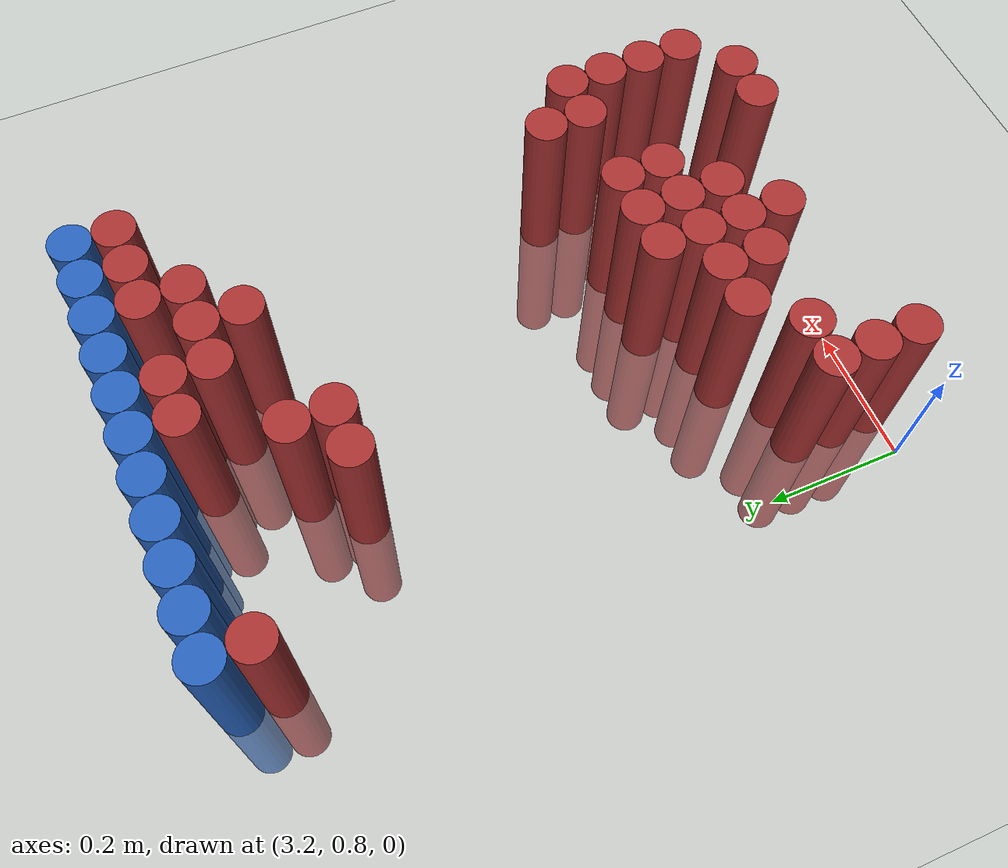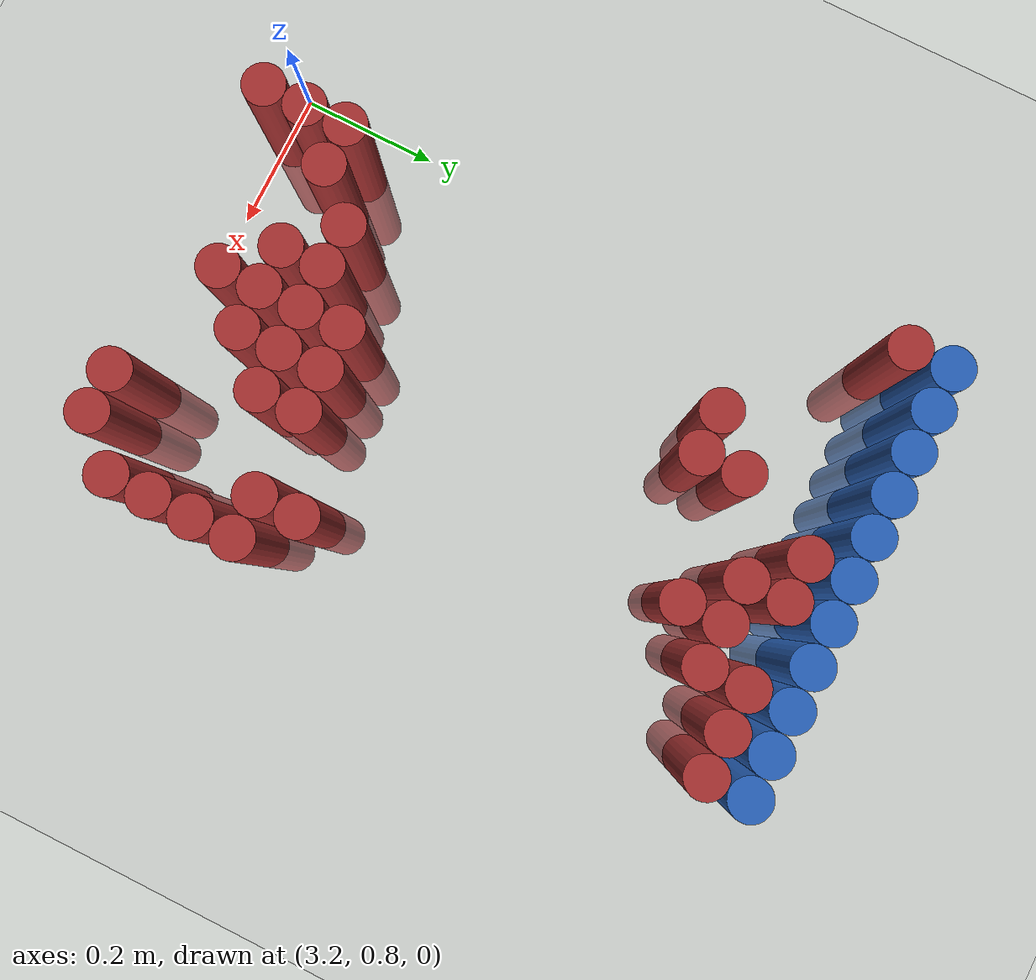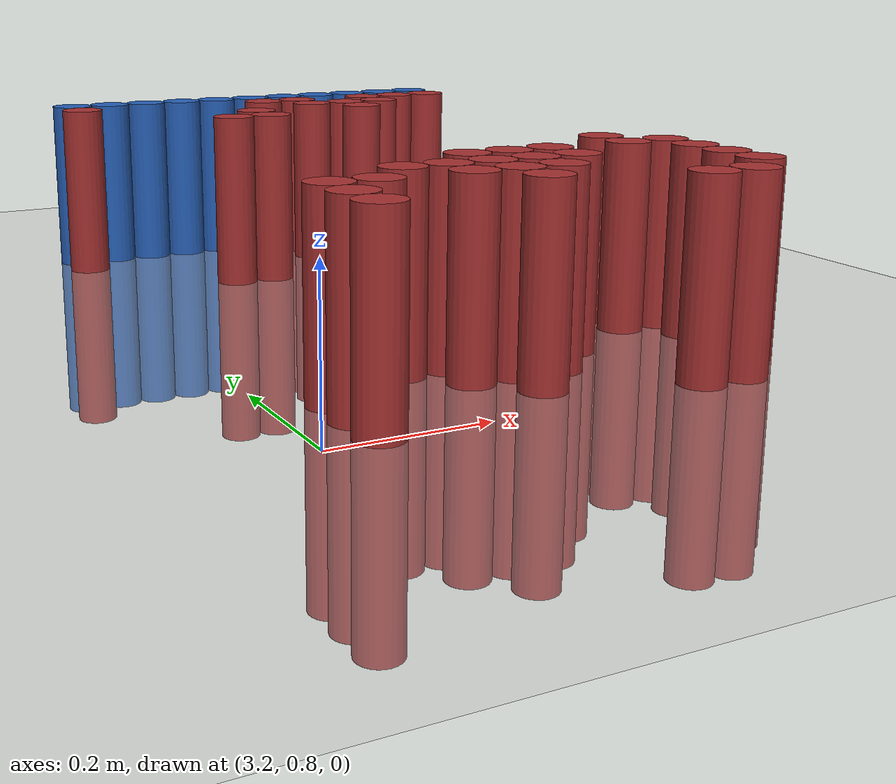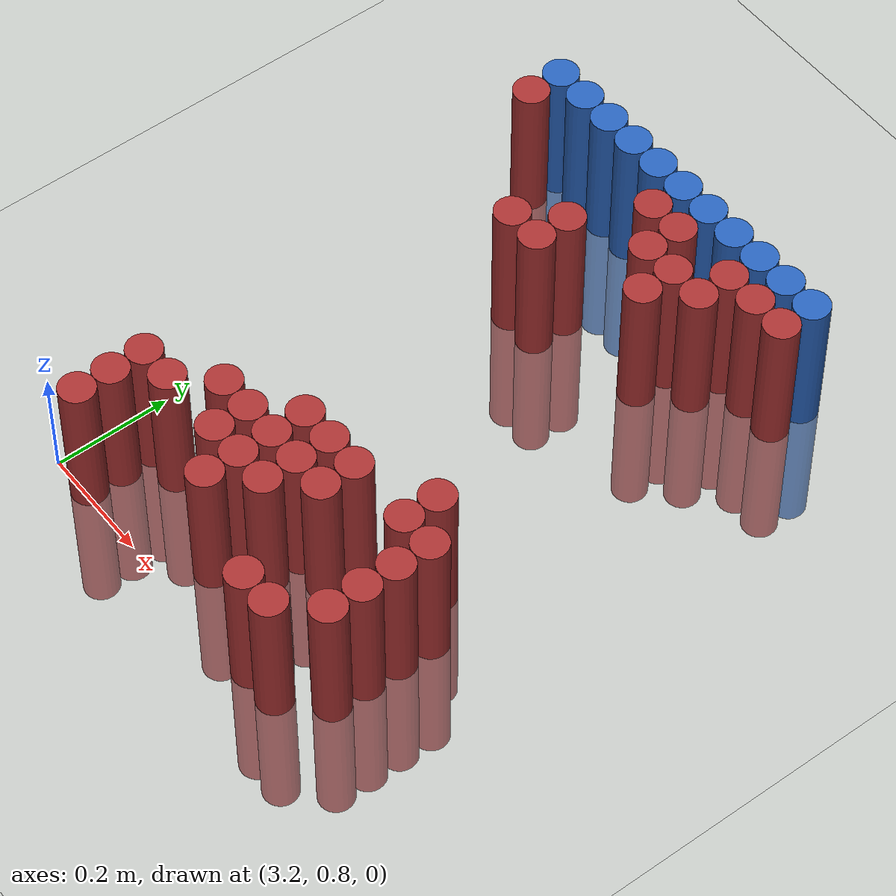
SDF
<sdf version="1.6">
 <world name="default">
  <model name="ground_plane">
   <static>1</static>
   <link name="link">
    <collision name="collision">
     <geometry><plane><normal>0 0 1</normal><size>100 100</size></plane></geometry>
     <surface><friction><ode><mu>100</mu><mu2>50</mu2></ode></friction></surface>
    </collision>
    <visual name="visual">
     <cast_shadows>0</cast_shadows>
     <geometry><plane><normal>0 0 1</normal><size>100 100</size></plane></geometry>
     <material>
      <script><uri>file://media/materials/scripts/gazebo.material</uri><name>Gazebo/Grey</name></script>
     </material>
    </visual>
   </link>
  </model>
  <model name="unit_cylinder_114">
   <static>1</static>
   <pose>3.210000 1.770000 0.000000 0.000000 0.000000 0.000000</pose>
   <link name="link">
    <inertial>
     <mass>1</mass>
     <inertia><ixx>0.145833</ixx><ixy>0</ixy><ixz>0</ixz><iyy>0.145833</iyy><iyz>0</iyz><izz>0.125</izz></inertia>
    </inertial>
    <collision name="collision">
     <geometry><cylinder><radius>0.030000</radius><length>0.5</length></cylinder></geometry>
    </collision>
    <visual name="visual">
     <geometry><cylinder><radius>0.030000</radius><length>0.5</length></cylinder></geometry>
     <material>
      <ambient>0.152000 0.379000 0.720000 1</ambient>
      <diffuse>0.152000 0.379000 0.720000 1</diffuse>
     </material>
     <material>
      <script><name>Gazebo/Grey</name><uri>file://media/materials/scripts/gazebo.material</uri></script>
     </material>
    </visual>
   </link>
  </model>
  <model name="unit_cylinder_115">
   <static>1</static>
   <pose>3.270000 1.770000 0.000000 0.000000 0.000000 0.000000</pose>
   <link name="link">
    <inertial>
     <mass>1</mass>
     <inertia><ixx>0.145833</ixx><ixy>0</ixy><ixz>0</ixz><iyy>0.145833</iyy><iyz>0</iyz><izz>0.125</izz></inertia>
    </inertial>
    <collision name="collision">
     <geometry><cylinder><radius>0.030000</radius><length>0.5</length></cylinder></geometry>
    </collision>
    <visual name="visual">
     <geometry><cylinder><radius>0.030000</radius><length>0.5</length></cylinder></geometry>
     <material>
      <ambient>0.152000 0.379000 0.720000 1</ambient>
      <diffuse>0.152000 0.379000 0.720000 1</diffuse>
     </material>
     <material>
      <script><name>Gazebo/Grey</name><uri>file://media/materials/scripts/gazebo.material</uri></script>
     </material>
    </visual>
   </link>
  </model>
  <model name="unit_cylinder_116">
   <static>1</static>
   <pose>3.330000 1.770000 0.000000 0.000000 0.000000 0.000000</pose>
   <link name="link">
    <inertial>
     <mass>1</mass>
     <inertia><ixx>0.145833</ixx><ixy>0</ixy><ixz>0</ixz><iyy>0.145833</iyy><iyz>0</iyz><izz>0.125</izz></inertia>
    </inertial>
    <collision name="collision">
     <geometry><cylinder><radius>0.030000</radius><length>0.5</length></cylinder></geometry>
    </collision>
    <visual name="visual">
     <geometry><cylinder><radius>0.030000</radius><length>0.5</length></cylinder></geometry>
     <material>
      <ambient>0.152000 0.379000 0.720000 1</ambient>
      <diffuse>0.152000 0.379000 0.720000 1</diffuse>
     </material>
     <material>
      <script><name>Gazebo/Grey</name><uri>file://media/materials/scripts/gazebo.material</uri></script>
     </material>
    </visual>
   </link>
  </model>
  <model name="unit_cylinder_117">
   <static>1</static>
   <pose>3.390000 1.770000 0.000000 0.000000 0.000000 0.000000</pose>
   <link name="link">
    <inertial>
     <mass>1</mass>
     <inertia><ixx>0.145833</ixx><ixy>0</ixy><ixz>0</ixz><iyy>0.145833</iyy><iyz>0</iyz><izz>0.125</izz></inertia>
    </inertial>
    <collision name="collision">
     <geometry><cylinder><radius>0.030000</radius><length>0.5</length></cylinder></geometry>
    </collision>
    <visual name="visual">
     <geometry><cylinder><radius>0.030000</radius><length>0.5</length></cylinder></geometry>
     <material>
      <ambient>0.152000 0.379000 0.720000 1</ambient>
      <diffuse>0.152000 0.379000 0.720000 1</diffuse>
     </material>
     <material>
      <script><name>Gazebo/Grey</name><uri>file://media/materials/scripts/gazebo.material</uri></script>
     </material>
    </visual>
   </link>
  </model>
  <model name="unit_cylinder_118">
   <static>1</static>
   <pose>3.450000 1.770000 0.000000 0.000000 0.000000 0.000000</pose>
   <link name="link">
    <inertial>
     <mass>1</mass>
     <inertia><ixx>0.145833</ixx><ixy>0</ixy><ixz>0</ixz><iyy>0.145833</iyy><iyz>0</iyz><izz>0.125</izz></inertia>
    </inertial>
    <collision name="collision">
     <geometry><cylinder><radius>0.030000</radius><length>0.5</length></cylinder></geometry>
    </collision>
    <visual name="visual">
     <geometry><cylinder><radius>0.030000</radius><length>0.5</length></cylinder></geometry>
     <material>
      <ambient>0.152000 0.379000 0.720000 1</ambient>
      <diffuse>0.152000 0.379000 0.720000 1</diffuse>
     </material>
     <material>
      <script><name>Gazebo/Grey</name><uri>file://media/materials/scripts/gazebo.material</uri></script>
     </material>
    </visual>
   </link>
  </model>
  <model name="unit_cylinder_119">
   <static>1</static>
   <pose>3.510000 1.770000 0.000000 0.000000 0.000000 0.000000</pose>
   <link name="link">
    <inertial>
     <mass>1</mass>
     <inertia><ixx>0.145833</ixx><ixy>0</ixy><ixz>0</ixz><iyy>0.145833</iyy><iyz>0</iyz><izz>0.125</izz></inertia>
    </inertial>
    <collision name="collision">
     <geometry><cylinder><radius>0.030000</radius><length>0.5</length></cylinder></geometry>
    </collision>
    <visual name="visual">
     <geometry><cylinder><radius>0.030000</radius><length>0.5</length></cylinder></geometry>
     <material>
      <ambient>0.152000 0.379000 0.720000 1</ambient>
      <diffuse>0.152000 0.379000 0.720000 1</diffuse>
     </material>
     <material>
      <script><name>Gazebo/Grey</name><uri>file://media/materials/scripts/gazebo.material</uri></script>
     </material>
    </visual>
   </link>
  </model>
  <model name="unit_cylinder_120">
   <static>1</static>
   <pose>3.570000 1.770000 0.000000 0.000000 0.000000 0.000000</pose>
   <link name="link">
    <inertial>
     <mass>1</mass>
     <inertia><ixx>0.145833</ixx><ixy>0</ixy><ixz>0</ixz><iyy>0.145833</iyy><iyz>0</iyz><izz>0.125</izz></inertia>
    </inertial>
    <collision name="collision">
     <geometry><cylinder><radius>0.030000</radius><length>0.5</length></cylinder></geometry>
    </collision>
    <visual name="visual">
     <geometry><cylinder><radius>0.030000</radius><length>0.5</length></cylinder></geometry>
     <material>
      <ambient>0.152000 0.379000 0.720000 1</ambient>
      <diffuse>0.152000 0.379000 0.720000 1</diffuse>
     </material>
     <material>
      <script><name>Gazebo/Grey</name><uri>file://media/materials/scripts/gazebo.material</uri></script>
     </material>
    </visual>
   </link>
  </model>
  <model name="unit_cylinder_121">
   <static>1</static>
   <pose>3.630000 1.770000 0.000000 0.000000 0.000000 0.000000</pose>
   <link name="link">
    <inertial>
     <mass>1</mass>
     <inertia><ixx>0.145833</ixx><ixy>0</ixy><ixz>0</ixz><iyy>0.145833</iyy><iyz>0</iyz><izz>0.125</izz></inertia>
    </inertial>
    <collision name="collision">
     <geometry><cylinder><radius>0.030000</radius><length>0.5</length></cylinder></geometry>
    </collision>
    <visual name="visual">
     <geometry><cylinder><radius>0.030000</radius><length>0.5</length></cylinder></geometry>
     <material>
      <ambient>0.152000 0.379000 0.720000 1</ambient>
      <diffuse>0.152000 0.379000 0.720000 1</diffuse>
     </material>
     <material>
      <script><name>Gazebo/Grey</name><uri>file://media/materials/scripts/gazebo.material</uri></script>
     </material>
    </visual>
   </link>
  </model>
  <model name="unit_cylinder_122">
   <static>1</static>
   <pose>3.690000 1.770000 0.000000 0.000000 0.000000 0.000000</pose>
   <link name="link">
    <inertial>
     <mass>1</mass>
     <inertia><ixx>0.145833</ixx><ixy>0</ixy><ixz>0</ixz><iyy>0.145833</iyy><iyz>0</iyz><izz>0.125</izz></inertia>
    </inertial>
    <collision name="collision">
     <geometry><cylinder><radius>0.030000</radius><length>0.5</length></cylinder></geometry>
    </collision>
    <visual name="visual">
     <geometry><cylinder><radius>0.030000</radius><length>0.5</length></cylinder></geometry>
     <material>
      <ambient>0.152000 0.379000 0.720000 1</ambient>
      <diffuse>0.152000 0.379000 0.720000 1</diffuse>
     </material>
     <material>
      <script><name>Gazebo/Grey</name><uri>file://media/materials/scripts/gazebo.material</uri></script>
     </material>
    </visual>
   </link>
  </model>
  <model name="unit_cylinder_123">
   <static>1</static>
   <pose>3.750000 1.770000 0.000000 0.000000 0.000000 0.000000</pose>
   <link name="link">
    <inertial>
     <mass>1</mass>
     <inertia><ixx>0.145833</ixx><ixy>0</ixy><ixz>0</ixz><iyy>0.145833</iyy><iyz>0</iyz><izz>0.125</izz></inertia>
    </inertial>
    <collision name="collision">
     <geometry><cylinder><radius>0.030000</radius><length>0.5</length></cylinder></geometry>
    </collision>
    <visual name="visual">
     <geometry><cylinder><radius>0.030000</radius><length>0.5</length></cylinder></geometry>
     <material>
      <ambient>0.152000 0.379000 0.720000 1</ambient>
      <diffuse>0.152000 0.379000 0.720000 1</diffuse>
     </material>
     <material>
      <script><name>Gazebo/Grey</name><uri>file://media/materials/scripts/gazebo.material</uri></script>
     </material>
    </visual>
   </link>
  </model>
  <model name="unit_cylinder_124">
   <static>1</static>
   <pose>3.810000 1.770000 0.000000 0.000000 0.000000 0.000000</pose>
   <link name="link">
    <inertial>
     <mass>1</mass>
     <inertia><ixx>0.145833</ixx><ixy>0</ixy><ixz>0</ixz><iyy>0.145833</iyy><iyz>0</iyz><izz>0.125</izz></inertia>
    </inertial>
    <collision name="collision">
     <geometry><cylinder><radius>0.030000</radius><length>0.5</length></cylinder></geometry>
    </collision>
    <visual name="visual">
     <geometry><cylinder><radius>0.030000</radius><length>0.5</length></cylinder></geometry>
     <material>
      <ambient>0.152000 0.379000 0.720000 1</ambient>
      <diffuse>0.152000 0.379000 0.720000 1</diffuse>
     </material>
     <material>
      <script><name>Gazebo/Grey</name><uri>file://media/materials/scripts/gazebo.material</uri></script>
     </material>
    </visual>
   </link>
  </model>
  <model name="unit_cylinder_138">
   <static>1</static>
   <pose>3.210000 1.710000 0.000000 0.000000 0.000000 0.000000</pose>
   <link name="link">
    <inertial>
     <mass>1</mass>
     <inertia><ixx>0.145833</ixx><ixy>0</ixy><ixz>0</ixz><iyy>0.145833</iyy><iyz>0</iyz><izz>0.125</izz></inertia>
    </inertial>
    <collision name="collision">
     <geometry><cylinder><radius>0.030000</radius><length>0.5</length></cylinder></geometry>
    </collision>
    <visual name="visual">
     <geometry><cylinder><radius>0.030000</radius><length>0.5</length></cylinder></geometry>
     <material>
      <ambient>0.648000 0.192000 0.192000 1</ambient>
      <diffuse>0.648000 0.192000 0.192000 1</diffuse>
     </material>
     <material>
      <script><name>Gazebo/Grey</name><uri>file://media/materials/scripts/gazebo.material</uri></script>
     </material>
    </visual>
   </link>
  </model>
  <model name="unit_cylinder_139">
   <static>1</static>
   <pose>3.510000 1.710000 0.000000 0.000000 0.000000 0.000000</pose>
   <link name="link">
    <inertial>
     <mass>1</mass>
     <inertia><ixx>0.145833</ixx><ixy>0</ixy><ixz>0</ixz><iyy>0.145833</iyy><iyz>0</iyz><izz>0.125</izz></inertia>
    </inertial>
    <collision name="collision">
     <geometry><cylinder><radius>0.030000</radius><length>0.5</length></cylinder></geometry>
    </collision>
    <visual name="visual">
     <geometry><cylinder><radius>0.030000</radius><length>0.5</length></cylinder></geometry>
     <material>
      <ambient>0.648000 0.192000 0.192000 1</ambient>
      <diffuse>0.648000 0.192000 0.192000 1</diffuse>
     </material>
     <material>
      <script><name>Gazebo/Grey</name><uri>file://media/materials/scripts/gazebo.material</uri></script>
     </material>
    </visual>
   </link>
  </model>
  <model name="unit_cylinder_140">
   <static>1</static>
   <pose>3.570000 1.710000 0.000000 0.000000 0.000000 0.000000</pose>
   <link name="link">
    <inertial>
     <mass>1</mass>
     <inertia><ixx>0.145833</ixx><ixy>0</ixy><ixz>0</ixz><iyy>0.145833</iyy><iyz>0</iyz><izz>0.125</izz></inertia>
    </inertial>
    <collision name="collision">
     <geometry><cylinder><radius>0.030000</radius><length>0.5</length></cylinder></geometry>
    </collision>
    <visual name="visual">
     <geometry><cylinder><radius>0.030000</radius><length>0.5</length></cylinder></geometry>
     <material>
      <ambient>0.648000 0.192000 0.192000 1</ambient>
      <diffuse>0.648000 0.192000 0.192000 1</diffuse>
     </material>
     <material>
      <script><name>Gazebo/Grey</name><uri>file://media/materials/scripts/gazebo.material</uri></script>
     </material>
    </visual>
   </link>
  </model>
  <model name="unit_cylinder_141">
   <static>1</static>
   <pose>3.690000 1.710000 0.000000 0.000000 0.000000 0.000000</pose>
   <link name="link">
    <inertial>
     <mass>1</mass>
     <inertia><ixx>0.145833</ixx><ixy>0</ixy><ixz>0</ixz><iyy>0.145833</iyy><iyz>0</iyz><izz>0.125</izz></inertia>
    </inertial>
    <collision name="collision">
     <geometry><cylinder><radius>0.030000</radius><length>0.5</length></cylinder></geometry>
    </collision>
    <visual name="visual">
     <geometry><cylinder><radius>0.030000</radius><length>0.5</length></cylinder></geometry>
     <material>
      <ambient>0.648000 0.192000 0.192000 1</ambient>
      <diffuse>0.648000 0.192000 0.192000 1</diffuse>
     </material>
     <material>
      <script><name>Gazebo/Grey</name><uri>file://media/materials/scripts/gazebo.material</uri></script>
     </material>
    </visual>
   </link>
  </model>
  <model name="unit_cylinder_142">
   <static>1</static>
   <pose>3.750000 1.710000 0.000000 0.000000 0.000000 0.000000</pose>
   <link name="link">
    <inertial>
     <mass>1</mass>
     <inertia><ixx>0.145833</ixx><ixy>0</ixy><ixz>0</ixz><iyy>0.145833</iyy><iyz>0</iyz><izz>0.125</izz></inertia>
    </inertial>
    <collision name="collision">
     <geometry><cylinder><radius>0.030000</radius><length>0.5</length></cylinder></geometry>
    </collision>
    <visual name="visual">
     <geometry><cylinder><radius>0.030000</radius><length>0.5</length></cylinder></geometry>
     <material>
      <ambient>0.648000 0.192000 0.192000 1</ambient>
      <diffuse>0.648000 0.192000 0.192000 1</diffuse>
     </material>
     <material>
      <script><name>Gazebo/Grey</name><uri>file://media/materials/scripts/gazebo.material</uri></script>
     </material>
    </visual>
   </link>
  </model>
  <model name="unit_cylinder_143">
   <static>1</static>
   <pose>3.810000 1.710000 0.000000 0.000000 0.000000 0.000000</pose>
   <link name="link">
    <inertial>
     <mass>1</mass>
     <inertia><ixx>0.145833</ixx><ixy>0</ixy><ixz>0</ixz><iyy>0.145833</iyy><iyz>0</iyz><izz>0.125</izz></inertia>
    </inertial>
    <collision name="collision">
     <geometry><cylinder><radius>0.030000</radius><length>0.5</length></cylinder></geometry>
    </collision>
    <visual name="visual">
     <geometry><cylinder><radius>0.030000</radius><length>0.5</length></cylinder></geometry>
     <material>
      <ambient>0.648000 0.192000 0.192000 1</ambient>
      <diffuse>0.648000 0.192000 0.192000 1</diffuse>
     </material>
     <material>
      <script><name>Gazebo/Grey</name><uri>file://media/materials/scripts/gazebo.material</uri></script>
     </material>
    </visual>
   </link>
  </model>
  <model name="unit_cylinder_154">
   <static>1</static>
   <pose>3.570000 1.650000 0.000000 0.000000 0.000000 0.000000</pose>
   <link name="link">
    <inertial>
     <mass>1</mass>
     <inertia><ixx>0.145833</ixx><ixy>0</ixy><ixz>0</ixz><iyy>0.145833</iyy><iyz>0</iyz><izz>0.125</izz></inertia>
    </inertial>
    <collision name="collision">
     <geometry><cylinder><radius>0.030000</radius><length>0.5</length></cylinder></geometry>
    </collision>
    <visual name="visual">
     <geometry><cylinder><radius>0.030000</radius><length>0.5</length></cylinder></geometry>
     <material>
      <ambient>0.648000 0.192000 0.192000 1</ambient>
      <diffuse>0.648000 0.192000 0.192000 1</diffuse>
     </material>
     <material>
      <script><name>Gazebo/Grey</name><uri>file://media/materials/scripts/gazebo.material</uri></script>
     </material>
    </visual>
   </link>
  </model>
  <model name="unit_cylinder_155">
   <static>1</static>
   <pose>3.630000 1.650000 0.000000 0.000000 0.000000 0.000000</pose>
   <link name="link">
    <inertial>
     <mass>1</mass>
     <inertia><ixx>0.145833</ixx><ixy>0</ixy><ixz>0</ixz><iyy>0.145833</iyy><iyz>0</iyz><izz>0.125</izz></inertia>
    </inertial>
    <collision name="collision">
     <geometry><cylinder><radius>0.030000</radius><length>0.5</length></cylinder></geometry>
    </collision>
    <visual name="visual">
     <geometry><cylinder><radius>0.030000</radius><length>0.5</length></cylinder></geometry>
     <material>
      <ambient>0.648000 0.192000 0.192000 1</ambient>
      <diffuse>0.648000 0.192000 0.192000 1</diffuse>
     </material>
     <material>
      <script><name>Gazebo/Grey</name><uri>file://media/materials/scripts/gazebo.material</uri></script>
     </material>
    </visual>
   </link>
  </model>
  <model name="unit_cylinder_156">
   <static>1</static>
   <pose>3.690000 1.650000 0.000000 0.000000 0.000000 0.000000</pose>
   <link name="link">
    <inertial>
     <mass>1</mass>
     <inertia><ixx>0.145833</ixx><ixy>0</ixy><ixz>0</ixz><iyy>0.145833</iyy><iyz>0</iyz><izz>0.125</izz></inertia>
    </inertial>
    <collision name="collision">
     <geometry><cylinder><radius>0.030000</radius><length>0.5</length></cylinder></geometry>
    </collision>
    <visual name="visual">
     <geometry><cylinder><radius>0.030000</radius><length>0.5</length></cylinder></geometry>
     <material>
      <ambient>0.648000 0.192000 0.192000 1</ambient>
      <diffuse>0.648000 0.192000 0.192000 1</diffuse>
     </material>
     <material>
      <script><name>Gazebo/Grey</name><uri>file://media/materials/scripts/gazebo.material</uri></script>
     </material>
    </visual>
   </link>
  </model>
  <model name="unit_cylinder_162">
   <static>1</static>
   <pose>3.450000 1.590000 0.000000 0.000000 0.000000 0.000000</pose>
   <link name="link">
    <inertial>
     <mass>1</mass>
     <inertia><ixx>0.145833</ixx><ixy>0</ixy><ixz>0</ixz><iyy>0.145833</iyy><iyz>0</iyz><izz>0.125</izz></inertia>
    </inertial>
    <collision name="collision">
     <geometry><cylinder><radius>0.030000</radius><length>0.5</length></cylinder></geometry>
    </collision>
    <visual name="visual">
     <geometry><cylinder><radius>0.030000</radius><length>0.5</length></cylinder></geometry>
     <material>
      <ambient>0.648000 0.192000 0.192000 1</ambient>
      <diffuse>0.648000 0.192000 0.192000 1</diffuse>
     </material>
     <material>
      <script><name>Gazebo/Grey</name><uri>file://media/materials/scripts/gazebo.material</uri></script>
     </material>
    </visual>
   </link>
  </model>
  <model name="unit_cylinder_163">
   <static>1</static>
   <pose>3.630000 1.590000 0.000000 0.000000 0.000000 0.000000</pose>
   <link name="link">
    <inertial>
     <mass>1</mass>
     <inertia><ixx>0.145833</ixx><ixy>0</ixy><ixz>0</ixz><iyy>0.145833</iyy><iyz>0</iyz><izz>0.125</izz></inertia>
    </inertial>
    <collision name="collision">
     <geometry><cylinder><radius>0.030000</radius><length>0.5</length></cylinder></geometry>
    </collision>
    <visual name="visual">
     <geometry><cylinder><radius>0.030000</radius><length>0.5</length></cylinder></geometry>
     <material>
      <ambient>0.648000 0.192000 0.192000 1</ambient>
      <diffuse>0.648000 0.192000 0.192000 1</diffuse>
     </material>
     <material>
      <script><name>Gazebo/Grey</name><uri>file://media/materials/scripts/gazebo.material</uri></script>
     </material>
    </visual>
   </link>
  </model>
  <model name="unit_cylinder_169">
   <static>1</static>
   <pose>3.390000 1.530000 0.000000 0.000000 0.000000 0.000000</pose>
   <link name="link">
    <inertial>
     <mass>1</mass>
     <inertia><ixx>0.145833</ixx><ixy>0</ixy><ixz>0</ixz><iyy>0.145833</iyy><iyz>0</iyz><izz>0.125</izz></inertia>
    </inertial>
    <collision name="collision">
     <geometry><cylinder><radius>0.030000</radius><length>0.5</length></cylinder></geometry>
    </collision>
    <visual name="visual">
     <geometry><cylinder><radius>0.030000</radius><length>0.5</length></cylinder></geometry>
     <material>
      <ambient>0.648000 0.192000 0.192000 1</ambient>
      <diffuse>0.648000 0.192000 0.192000 1</diffuse>
     </material>
     <material>
      <script><name>Gazebo/Grey</name><uri>file://media/materials/scripts/gazebo.material</uri></script>
     </material>
    </visual>
   </link>
  </model>
  <model name="unit_cylinder_170">
   <static>1</static>
   <pose>3.450000 1.530000 0.000000 0.000000 0.000000 0.000000</pose>
   <link name="link">
    <inertial>
     <mass>1</mass>
     <inertia><ixx>0.145833</ixx><ixy>0</ixy><ixz>0</ixz><iyy>0.145833</iyy><iyz>0</iyz><izz>0.125</izz></inertia>
    </inertial>
    <collision name="collision">
     <geometry><cylinder><radius>0.030000</radius><length>0.5</length></cylinder></geometry>
    </collision>
    <visual name="visual">
     <geometry><cylinder><radius>0.030000</radius><length>0.5</length></cylinder></geometry>
     <material>
      <ambient>0.648000 0.192000 0.192000 1</ambient>
      <diffuse>0.648000 0.192000 0.192000 1</diffuse>
     </material>
     <material>
      <script><name>Gazebo/Grey</name><uri>file://media/materials/scripts/gazebo.material</uri></script>
     </material>
    </visual>
   </link>
  </model>
  <model name="unit_cylinder_183">
   <static>1</static>
   <pose>3.750000 1.110000 0.000000 0.000000 0.000000 0.000000</pose>
   <link name="link">
    <inertial>
     <mass>1</mass>
     <inertia><ixx>0.145833</ixx><ixy>0</ixy><ixz>0</ixz><iyy>0.145833</iyy><iyz>0</iyz><izz>0.125</izz></inertia>
    </inertial>
    <collision name="collision">
     <geometry><cylinder><radius>0.030000</radius><length>0.5</length></cylinder></geometry>
    </collision>
    <visual name="visual">
     <geometry><cylinder><radius>0.030000</radius><length>0.5</length></cylinder></geometry>
     <material>
      <ambient>0.648000 0.192000 0.192000 1</ambient>
      <diffuse>0.648000 0.192000 0.192000 1</diffuse>
     </material>
     <material>
      <script><name>Gazebo/Grey</name><uri>file://media/materials/scripts/gazebo.material</uri></script>
     </material>
    </visual>
   </link>
  </model>
  <model name="unit_cylinder_186">
   <static>1</static>
   <pose>3.510000 1.050000 0.000000 0.000000 0.000000 0.000000</pose>
   <link name="link">
    <inertial>
     <mass>1</mass>
     <inertia><ixx>0.145833</ixx><ixy>0</ixy><ixz>0</ixz><iyy>0.145833</iyy><iyz>0</iyz><izz>0.125</izz></inertia>
    </inertial>
    <collision name="collision">
     <geometry><cylinder><radius>0.030000</radius><length>0.5</length></cylinder></geometry>
    </collision>
    <visual name="visual">
     <geometry><cylinder><radius>0.030000</radius><length>0.5</length></cylinder></geometry>
     <material>
      <ambient>0.648000 0.192000 0.192000 1</ambient>
      <diffuse>0.648000 0.192000 0.192000 1</diffuse>
     </material>
     <material>
      <script><name>Gazebo/Grey</name><uri>file://media/materials/scripts/gazebo.material</uri></script>
     </material>
    </visual>
   </link>
  </model>
  <model name="unit_cylinder_187">
   <static>1</static>
   <pose>3.570000 1.050000 0.000000 0.000000 0.000000 0.000000</pose>
   <link name="link">
    <inertial>
     <mass>1</mass>
     <inertia><ixx>0.145833</ixx><ixy>0</ixy><ixz>0</ixz><iyy>0.145833</iyy><iyz>0</iyz><izz>0.125</izz></inertia>
    </inertial>
    <collision name="collision">
     <geometry><cylinder><radius>0.030000</radius><length>0.5</length></cylinder></geometry>
    </collision>
    <visual name="visual">
     <geometry><cylinder><radius>0.030000</radius><length>0.5</length></cylinder></geometry>
     <material>
      <ambient>0.648000 0.192000 0.192000 1</ambient>
      <diffuse>0.648000 0.192000 0.192000 1</diffuse>
     </material>
     <material>
      <script><name>Gazebo/Grey</name><uri>file://media/materials/scripts/gazebo.material</uri></script>
     </material>
    </visual>
   </link>
  </model>
  <model name="unit_cylinder_188">
   <static>1</static>
   <pose>3.630000 1.050000 0.000000 0.000000 0.000000 0.000000</pose>
   <link name="link">
    <inertial>
     <mass>1</mass>
     <inertia><ixx>0.145833</ixx><ixy>0</ixy><ixz>0</ixz><iyy>0.145833</iyy><iyz>0</iyz><izz>0.125</izz></inertia>
    </inertial>
    <collision name="collision">
     <geometry><cylinder><radius>0.030000</radius><length>0.5</length></cylinder></geometry>
    </collision>
    <visual name="visual">
     <geometry><cylinder><radius>0.030000</radius><length>0.5</length></cylinder></geometry>
     <material>
      <ambient>0.648000 0.192000 0.192000 1</ambient>
      <diffuse>0.648000 0.192000 0.192000 1</diffuse>
     </material>
     <material>
      <script><name>Gazebo/Grey</name><uri>file://media/materials/scripts/gazebo.material</uri></script>
     </material>
    </visual>
   </link>
  </model>
  <model name="unit_cylinder_189">
   <static>1</static>
   <pose>3.750000 1.050000 0.000000 0.000000 0.000000 0.000000</pose>
   <link name="link">
    <inertial>
     <mass>1</mass>
     <inertia><ixx>0.145833</ixx><ixy>0</ixy><ixz>0</ixz><iyy>0.145833</iyy><iyz>0</iyz><izz>0.125</izz></inertia>
    </inertial>
    <collision name="collision">
     <geometry><cylinder><radius>0.030000</radius><length>0.5</length></cylinder></geometry>
    </collision>
    <visual name="visual">
     <geometry><cylinder><radius>0.030000</radius><length>0.5</length></cylinder></geometry>
     <material>
      <ambient>0.648000 0.192000 0.192000 1</ambient>
      <diffuse>0.648000 0.192000 0.192000 1</diffuse>
     </material>
     <material>
      <script><name>Gazebo/Grey</name><uri>file://media/materials/scripts/gazebo.material</uri></script>
     </material>
    </visual>
   </link>
  </model>
  <model name="unit_cylinder_190">
   <static>1</static>
   <pose>3.810000 1.050000 0.000000 0.000000 0.000000 0.000000</pose>
   <link name="link">
    <inertial>
     <mass>1</mass>
     <inertia><ixx>0.145833</ixx><ixy>0</ixy><ixz>0</ixz><iyy>0.145833</iyy><iyz>0</iyz><izz>0.125</izz></inertia>
    </inertial>
    <collision name="collision">
     <geometry><cylinder><radius>0.030000</radius><length>0.5</length></cylinder></geometry>
    </collision>
    <visual name="visual">
     <geometry><cylinder><radius>0.030000</radius><length>0.5</length></cylinder></geometry>
     <material>
      <ambient>0.648000 0.192000 0.192000 1</ambient>
      <diffuse>0.648000 0.192000 0.192000 1</diffuse>
     </material>
     <material>
      <script><name>Gazebo/Grey</name><uri>file://media/materials/scripts/gazebo.material</uri></script>
     </material>
    </visual>
   </link>
  </model>
  <model name="unit_cylinder_193">
   <static>1</static>
   <pose>3.390000 0.990000 0.000000 0.000000 0.000000 0.000000</pose>
   <link name="link">
    <inertial>
     <mass>1</mass>
     <inertia><ixx>0.145833</ixx><ixy>0</ixy><ixz>0</ixz><iyy>0.145833</iyy><iyz>0</iyz><izz>0.125</izz></inertia>
    </inertial>
    <collision name="collision">
     <geometry><cylinder><radius>0.030000</radius><length>0.5</length></cylinder></geometry>
    </collision>
    <visual name="visual">
     <geometry><cylinder><radius>0.030000</radius><length>0.5</length></cylinder></geometry>
     <material>
      <ambient>0.648000 0.192000 0.192000 1</ambient>
      <diffuse>0.648000 0.192000 0.192000 1</diffuse>
     </material>
     <material>
      <script><name>Gazebo/Grey</name><uri>file://media/materials/scripts/gazebo.material</uri></script>
     </material>
    </visual>
   </link>
  </model>
  <model name="unit_cylinder_194">
   <static>1</static>
   <pose>3.450000 0.990000 0.000000 0.000000 0.000000 0.000000</pose>
   <link name="link">
    <inertial>
     <mass>1</mass>
     <inertia><ixx>0.145833</ixx><ixy>0</ixy><ixz>0</ixz><iyy>0.145833</iyy><iyz>0</iyz><izz>0.125</izz></inertia>
    </inertial>
    <collision name="collision">
     <geometry><cylinder><radius>0.030000</radius><length>0.5</length></cylinder></geometry>
    </collision>
    <visual name="visual">
     <geometry><cylinder><radius>0.030000</radius><length>0.5</length></cylinder></geometry>
     <material>
      <ambient>0.648000 0.192000 0.192000 1</ambient>
      <diffuse>0.648000 0.192000 0.192000 1</diffuse>
     </material>
     <material>
      <script><name>Gazebo/Grey</name><uri>file://media/materials/scripts/gazebo.material</uri></script>
     </material>
    </visual>
   </link>
  </model>
  <model name="unit_cylinder_195">
   <static>1</static>
   <pose>3.510000 0.990000 0.000000 0.000000 0.000000 0.000000</pose>
   <link name="link">
    <inertial>
     <mass>1</mass>
     <inertia><ixx>0.145833</ixx><ixy>0</ixy><ixz>0</ixz><iyy>0.145833</iyy><iyz>0</iyz><izz>0.125</izz></inertia>
    </inertial>
    <collision name="collision">
     <geometry><cylinder><radius>0.030000</radius><length>0.5</length></cylinder></geometry>
    </collision>
    <visual name="visual">
     <geometry><cylinder><radius>0.030000</radius><length>0.5</length></cylinder></geometry>
     <material>
      <ambient>0.648000 0.192000 0.192000 1</ambient>
      <diffuse>0.648000 0.192000 0.192000 1</diffuse>
     </material>
     <material>
      <script><name>Gazebo/Grey</name><uri>file://media/materials/scripts/gazebo.material</uri></script>
     </material>
    </visual>
   </link>
  </model>
  <model name="unit_cylinder_196">
   <static>1</static>
   <pose>3.570000 0.990000 0.000000 0.000000 0.000000 0.000000</pose>
   <link name="link">
    <inertial>
     <mass>1</mass>
     <inertia><ixx>0.145833</ixx><ixy>0</ixy><ixz>0</ixz><iyy>0.145833</iyy><iyz>0</iyz><izz>0.125</izz></inertia>
    </inertial>
    <collision name="collision">
     <geometry><cylinder><radius>0.030000</radius><length>0.5</length></cylinder></geometry>
    </collision>
    <visual name="visual">
     <geometry><cylinder><radius>0.030000</radius><length>0.5</length></cylinder></geometry>
     <material>
      <ambient>0.648000 0.192000 0.192000 1</ambient>
      <diffuse>0.648000 0.192000 0.192000 1</diffuse>
     </material>
     <material>
      <script><name>Gazebo/Grey</name><uri>file://media/materials/scripts/gazebo.material</uri></script>
     </material>
    </visual>
   </link>
  </model>
  <model name="unit_cylinder_197">
   <static>1</static>
   <pose>3.630000 0.990000 0.000000 0.000000 0.000000 0.000000</pose>
   <link name="link">
    <inertial>
     <mass>1</mass>
     <inertia><ixx>0.145833</ixx><ixy>0</ixy><ixz>0</ixz><iyy>0.145833</iyy><iyz>0</iyz><izz>0.125</izz></inertia>
    </inertial>
    <collision name="collision">
     <geometry><cylinder><radius>0.030000</radius><length>0.5</length></cylinder></geometry>
    </collision>
    <visual name="visual">
     <geometry><cylinder><radius>0.030000</radius><length>0.5</length></cylinder></geometry>
     <material>
      <ambient>0.648000 0.192000 0.192000 1</ambient>
      <diffuse>0.648000 0.192000 0.192000 1</diffuse>
     </material>
     <material>
      <script><name>Gazebo/Grey</name><uri>file://media/materials/scripts/gazebo.material</uri></script>
     </material>
    </visual>
   </link>
  </model>
  <model name="unit_cylinder_198">
   <static>1</static>
   <pose>3.810000 0.990000 0.000000 0.000000 0.000000 0.000000</pose>
   <link name="link">
    <inertial>
     <mass>1</mass>
     <inertia><ixx>0.145833</ixx><ixy>0</ixy><ixz>0</ixz><iyy>0.145833</iyy><iyz>0</iyz><izz>0.125</izz></inertia>
    </inertial>
    <collision name="collision">
     <geometry><cylinder><radius>0.030000</radius><length>0.5</length></cylinder></geometry>
    </collision>
    <visual name="visual">
     <geometry><cylinder><radius>0.030000</radius><length>0.5</length></cylinder></geometry>
     <material>
      <ambient>0.648000 0.192000 0.192000 1</ambient>
      <diffuse>0.648000 0.192000 0.192000 1</diffuse>
     </material>
     <material>
      <script><name>Gazebo/Grey</name><uri>file://media/materials/scripts/gazebo.material</uri></script>
     </material>
    </visual>
   </link>
  </model>
  <model name="unit_cylinder_201">
   <static>1</static>
   <pose>3.270000 0.930000 0.000000 0.000000 0.000000 0.000000</pose>
   <link name="link">
    <inertial>
     <mass>1</mass>
     <inertia><ixx>0.145833</ixx><ixy>0</ixy><ixz>0</ixz><iyy>0.145833</iyy><iyz>0</iyz><izz>0.125</izz></inertia>
    </inertial>
    <collision name="collision">
     <geometry><cylinder><radius>0.030000</radius><length>0.5</length></cylinder></geometry>
    </collision>
    <visual name="visual">
     <geometry><cylinder><radius>0.030000</radius><length>0.5</length></cylinder></geometry>
     <material>
      <ambient>0.648000 0.192000 0.192000 1</ambient>
      <diffuse>0.648000 0.192000 0.192000 1</diffuse>
     </material>
     <material>
      <script><name>Gazebo/Grey</name><uri>file://media/materials/scripts/gazebo.material</uri></script>
     </material>
    </visual>
   </link>
  </model>
  <model name="unit_cylinder_202">
   <static>1</static>
   <pose>3.330000 0.930000 0.000000 0.000000 0.000000 0.000000</pose>
   <link name="link">
    <inertial>
     <mass>1</mass>
     <inertia><ixx>0.145833</ixx><ixy>0</ixy><ixz>0</ixz><iyy>0.145833</iyy><iyz>0</iyz><izz>0.125</izz></inertia>
    </inertial>
    <collision name="collision">
     <geometry><cylinder><radius>0.030000</radius><length>0.5</length></cylinder></geometry>
    </collision>
    <visual name="visual">
     <geometry><cylinder><radius>0.030000</radius><length>0.5</length></cylinder></geometry>
     <material>
      <ambient>0.648000 0.192000 0.192000 1</ambient>
      <diffuse>0.648000 0.192000 0.192000 1</diffuse>
     </material>
     <material>
      <script><name>Gazebo/Grey</name><uri>file://media/materials/scripts/gazebo.material</uri></script>
     </material>
    </visual>
   </link>
  </model>
  <model name="unit_cylinder_203">
   <static>1</static>
   <pose>3.450000 0.930000 0.000000 0.000000 0.000000 0.000000</pose>
   <link name="link">
    <inertial>
     <mass>1</mass>
     <inertia><ixx>0.145833</ixx><ixy>0</ixy><ixz>0</ixz><iyy>0.145833</iyy><iyz>0</iyz><izz>0.125</izz></inertia>
    </inertial>
    <collision name="collision">
     <geometry><cylinder><radius>0.030000</radius><length>0.5</length></cylinder></geometry>
    </collision>
    <visual name="visual">
     <geometry><cylinder><radius>0.030000</radius><length>0.5</length></cylinder></geometry>
     <material>
      <ambient>0.648000 0.192000 0.192000 1</ambient>
      <diffuse>0.648000 0.192000 0.192000 1</diffuse>
     </material>
     <material>
      <script><name>Gazebo/Grey</name><uri>file://media/materials/scripts/gazebo.material</uri></script>
     </material>
    </visual>
   </link>
  </model>
  <model name="unit_cylinder_204">
   <static>1</static>
   <pose>3.510000 0.930000 0.000000 0.000000 0.000000 0.000000</pose>
   <link name="link">
    <inertial>
     <mass>1</mass>
     <inertia><ixx>0.145833</ixx><ixy>0</ixy><ixz>0</ixz><iyy>0.145833</iyy><iyz>0</iyz><izz>0.125</izz></inertia>
    </inertial>
    <collision name="collision">
     <geometry><cylinder><radius>0.030000</radius><length>0.5</length></cylinder></geometry>
    </collision>
    <visual name="visual">
     <geometry><cylinder><radius>0.030000</radius><length>0.5</length></cylinder></geometry>
     <material>
      <ambient>0.648000 0.192000 0.192000 1</ambient>
      <diffuse>0.648000 0.192000 0.192000 1</diffuse>
     </material>
     <material>
      <script><name>Gazebo/Grey</name><uri>file://media/materials/scripts/gazebo.material</uri></script>
     </material>
    </visual>
   </link>
  </model>
  <model name="unit_cylinder_205">
   <static>1</static>
   <pose>3.570000 0.930000 0.000000 0.000000 0.000000 0.000000</pose>
   <link name="link">
    <inertial>
     <mass>1</mass>
     <inertia><ixx>0.145833</ixx><ixy>0</ixy><ixz>0</ixz><iyy>0.145833</iyy><iyz>0</iyz><izz>0.125</izz></inertia>
    </inertial>
    <collision name="collision">
     <geometry><cylinder><radius>0.030000</radius><length>0.5</length></cylinder></geometry>
    </collision>
    <visual name="visual">
     <geometry><cylinder><radius>0.030000</radius><length>0.5</length></cylinder></geometry>
     <material>
      <ambient>0.648000 0.192000 0.192000 1</ambient>
      <diffuse>0.648000 0.192000 0.192000 1</diffuse>
     </material>
     <material>
      <script><name>Gazebo/Grey</name><uri>file://media/materials/scripts/gazebo.material</uri></script>
     </material>
    </visual>
   </link>
  </model>
  <model name="unit_cylinder_206">
   <static>1</static>
   <pose>3.810000 0.930000 0.000000 0.000000 0.000000 0.000000</pose>
   <link name="link">
    <inertial>
     <mass>1</mass>
     <inertia><ixx>0.145833</ixx><ixy>0</ixy><ixz>0</ixz><iyy>0.145833</iyy><iyz>0</iyz><izz>0.125</izz></inertia>
    </inertial>
    <collision name="collision">
     <geometry><cylinder><radius>0.030000</radius><length>0.5</length></cylinder></geometry>
    </collision>
    <visual name="visual">
     <geometry><cylinder><radius>0.030000</radius><length>0.5</length></cylinder></geometry>
     <material>
      <ambient>0.648000 0.192000 0.192000 1</ambient>
      <diffuse>0.648000 0.192000 0.192000 1</diffuse>
     </material>
     <material>
      <script><name>Gazebo/Grey</name><uri>file://media/materials/scripts/gazebo.material</uri></script>
     </material>
    </visual>
   </link>
  </model>
  <model name="unit_cylinder_209">
   <static>1</static>
   <pose>3.270000 0.870000 0.000000 0.000000 0.000000 0.000000</pose>
   <link name="link">
    <inertial>
     <mass>1</mass>
     <inertia><ixx>0.145833</ixx><ixy>0</ixy><ixz>0</ixz><iyy>0.145833</iyy><iyz>0</iyz><izz>0.125</izz></inertia>
    </inertial>
    <collision name="collision">
     <geometry><cylinder><radius>0.030000</radius><length>0.5</length></cylinder></geometry>
    </collision>
    <visual name="visual">
     <geometry><cylinder><radius>0.030000</radius><length>0.5</length></cylinder></geometry>
     <material>
      <ambient>0.648000 0.192000 0.192000 1</ambient>
      <diffuse>0.648000 0.192000 0.192000 1</diffuse>
     </material>
     <material>
      <script><name>Gazebo/Grey</name><uri>file://media/materials/scripts/gazebo.material</uri></script>
     </material>
    </visual>
   </link>
  </model>
  <model name="unit_cylinder_210">
   <static>1</static>
   <pose>3.510000 0.870000 0.000000 0.000000 0.000000 0.000000</pose>
   <link name="link">
    <inertial>
     <mass>1</mass>
     <inertia><ixx>0.145833</ixx><ixy>0</ixy><ixz>0</ixz><iyy>0.145833</iyy><iyz>0</iyz><izz>0.125</izz></inertia>
    </inertial>
    <collision name="collision">
     <geometry><cylinder><radius>0.030000</radius><length>0.5</length></cylinder></geometry>
    </collision>
    <visual name="visual">
     <geometry><cylinder><radius>0.030000</radius><length>0.5</length></cylinder></geometry>
     <material>
      <ambient>0.648000 0.192000 0.192000 1</ambient>
      <diffuse>0.648000 0.192000 0.192000 1</diffuse>
     </material>
     <material>
      <script><name>Gazebo/Grey</name><uri>file://media/materials/scripts/gazebo.material</uri></script>
     </material>
    </visual>
   </link>
  </model>
  <model name="unit_cylinder_211">
   <static>1</static>
   <pose>3.810000 0.870000 0.000000 0.000000 0.000000 0.000000</pose>
   <link name="link">
    <inertial>
     <mass>1</mass>
     <inertia><ixx>0.145833</ixx><ixy>0</ixy><ixz>0</ixz><iyy>0.145833</iyy><iyz>0</iyz><izz>0.125</izz></inertia>
    </inertial>
    <collision name="collision">
     <geometry><cylinder><radius>0.030000</radius><length>0.5</length></cylinder></geometry>
    </collision>
    <visual name="visual">
     <geometry><cylinder><radius>0.030000</radius><length>0.5</length></cylinder></geometry>
     <material>
      <ambient>0.648000 0.192000 0.192000 1</ambient>
      <diffuse>0.648000 0.192000 0.192000 1</diffuse>
     </material>
     <material>
      <script><name>Gazebo/Grey</name><uri>file://media/materials/scripts/gazebo.material</uri></script>
     </material>
    </visual>
   </link>
  </model>
  <model name="unit_cylinder_214">
   <static>1</static>
   <pose>3.270000 0.810000 0.000000 0.000000 0.000000 0.000000</pose>
   <link name="link">
    <inertial>
     <mass>1</mass>
     <inertia><ixx>0.145833</ixx><ixy>0</ixy><ixz>0</ixz><iyy>0.145833</iyy><iyz>0</iyz><izz>0.125</izz></inertia>
    </inertial>
    <collision name="collision">
     <geometry><cylinder><radius>0.030000</radius><length>0.5</length></cylinder></geometry>
    </collision>
    <visual name="visual">
     <geometry><cylinder><radius>0.030000</radius><length>0.5</length></cylinder></geometry>
     <material>
      <ambient>0.648000 0.192000 0.192000 1</ambient>
      <diffuse>0.648000 0.192000 0.192000 1</diffuse>
     </material>
     <material>
      <script><name>Gazebo/Grey</name><uri>file://media/materials/scripts/gazebo.material</uri></script>
     </material>
    </visual>
   </link>
  </model>
  <model name="unit_cylinder_215">
   <static>1</static>
   <pose>3.690000 0.810000 0.000000 0.000000 0.000000 0.000000</pose>
   <link name="link">
    <inertial>
     <mass>1</mass>
     <inertia><ixx>0.145833</ixx><ixy>0</ixy><ixz>0</ixz><iyy>0.145833</iyy><iyz>0</iyz><izz>0.125</izz></inertia>
    </inertial>
    <collision name="collision">
     <geometry><cylinder><radius>0.030000</radius><length>0.5</length></cylinder></geometry>
    </collision>
    <visual name="visual">
     <geometry><cylinder><radius>0.030000</radius><length>0.5</length></cylinder></geometry>
     <material>
      <ambient>0.648000 0.192000 0.192000 1</ambient>
      <diffuse>0.648000 0.192000 0.192000 1</diffuse>
     </material>
     <material>
      <script><name>Gazebo/Grey</name><uri>file://media/materials/scripts/gazebo.material</uri></script>
     </material>
    </visual>
   </link>
  </model>
  <model name="unit_cylinder_216">
   <static>1</static>
   <pose>3.750000 0.810000 0.000000 0.000000 0.000000 0.000000</pose>
   <link name="link">
    <inertial>
     <mass>1</mass>
     <inertia><ixx>0.145833</ixx><ixy>0</ixy><ixz>0</ixz><iyy>0.145833</iyy><iyz>0</iyz><izz>0.125</izz></inertia>
    </inertial>
    <collision name="collision">
     <geometry><cylinder><radius>0.030000</radius><length>0.5</length></cylinder></geometry>
    </collision>
    <visual name="visual">
     <geometry><cylinder><radius>0.030000</radius><length>0.5</length></cylinder></geometry>
     <material>
      <ambient>0.648000 0.192000 0.192000 1</ambient>
      <diffuse>0.648000 0.192000 0.192000 1</diffuse>
     </material>
     <material>
      <script><name>Gazebo/Grey</name><uri>file://media/materials/scripts/gazebo.material</uri></script>
     </material>
    </visual>
   </link>
  </model>
 </world>
</sdf>
